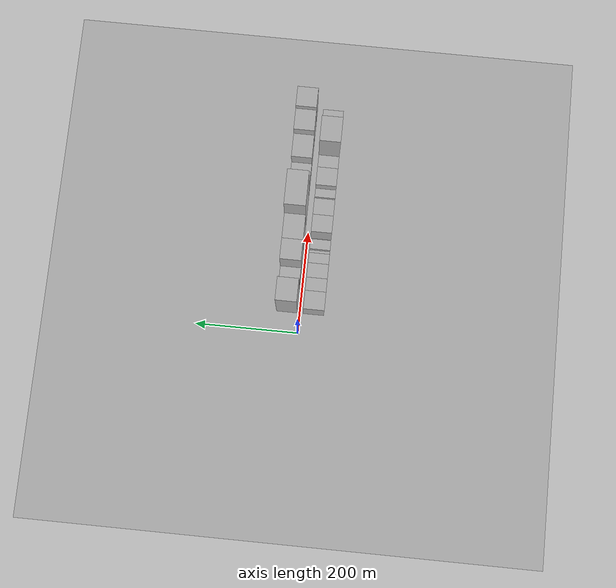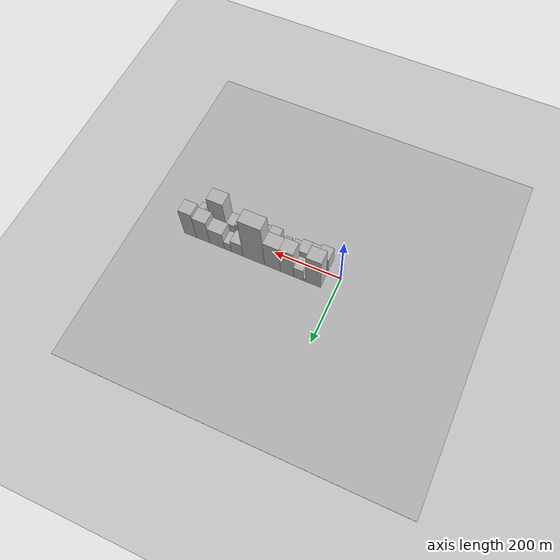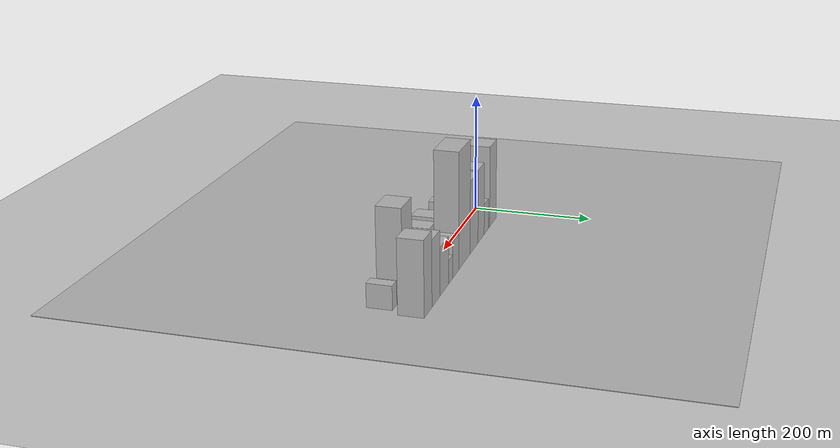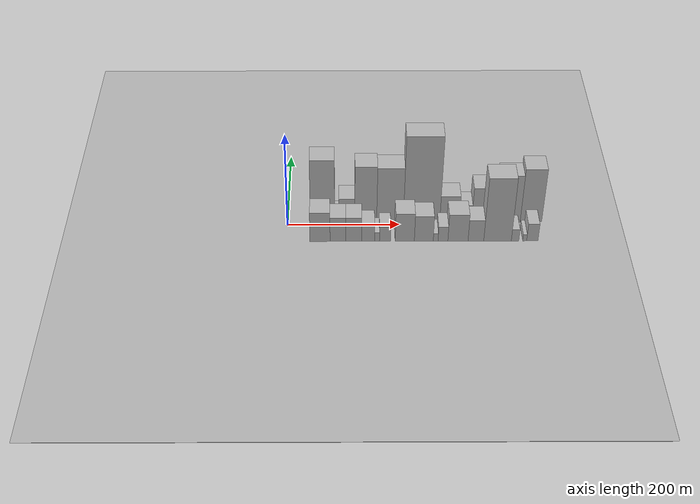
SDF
<?xml version="1.0" encoding="utf-8"?>

<sdf version="1.6">

   <world name="default">

      <gui fullscreen="0">

         <camera name="user_camera">

            <pose>-15 0 4.57585 0 0 0</pose>

            <view_controller>orbit</view_controller>

         </camera>

      </gui>

      <scene>

         <sky>

           <clouds>

             <speed>12</speed>

           </clouds>

         </sky>

         <ambient>0.4 0.4 0.4 1</ambient>

         <background>0.7 0.7 0.7 1</background>

         <shadows>1</shadows>

      </scene>

      <gravity>0 0 -9.8066</gravity>

      <magnetic_field>6e-06 2.3e-05 -4.2e-05</magnetic_field>

      <physics default="0" name="default_physics" type="ode">

         <ode>

            <solver>

               <type>quick</type>

               <iters>10</iters>

               <sor>1.0</sor>

               <use_dynamic_moi_rescaling>0</use_dynamic_moi_rescaling>

            </solver>

            <constraints>

               <cfm>0</cfm>

               <erp>0.2</erp>

               <contact_max_correcting_vel>100</contact_max_correcting_vel>

               <contact_surface_layer>0.001</contact_surface_layer>

            </constraints>

         </ode>

         <max_step_size>0.004</max_step_size>

         <real_time_factor>1</real_time_factor>

         <real_time_update_rate>250</real_time_update_rate>

      </physics>

      <light name="sun" type="directional">

         <cast_shadows>1</cast_shadows>

         <pose>0 0 10 0 0 0</pose>

         <diffuse>0.8 0.8 0.8 1</diffuse>

         <specular>0.2 0.2 0.2 1</specular>

         <attenuation>

            <range>1000</range>

            <constant>0.9</constant>

            <linear>0.01</linear>

            <quadratic>0.001</quadratic>

         </attenuation>

         <direction>-0.5 0.1 -0.9</direction>

      </light>

      <include>

         <name>ground_plane_1</name>

         <uri>model://HANNAS_ground_plane</uri>

         <pose>0 0 0  0 0 0</pose>

      </include>

      <include>

         <name>ground_plane_2</name>

         <uri>model://HANNAS_ground_plane</uri>

         <pose>100 0 0  0 0 0</pose>

      </include>

      <model name="building_1">

         <static>1</static>

         <pose frame="">61.8487 26.0000 0 0.000000 0.000000 1.570796</pose>

         <link name="link">

            <pose frame="">0 0 70.50 0 0 0</pose>

            <collision name="collision">

               <geometry>

                  <box>

                     <size>40.0000 43.6974 141.0000</size>

                  </box>

               </geometry>

               <max_contacts>10</max_contacts>

               <surface>

                  <contact>

                     <ode/>

                  </contact>

                  <bounce/>

                  <friction>

                     <torsional>

                        <ode/>

                     </torsional>

                     <ode/>

                  </friction>

               </surface>

            </collision>

            <visual name="visual">

               <cast_shadows>0</cast_shadows>

               <geometry>

                  <box>

                     <size>40.0000 43.6974 141.0000</size>

                  </box>

               </geometry>

               <material>

                  <script>

                     <uri>model://HANNAS_wall/materials/scripts</uri>

                     <uri>model://HANNAS_wall/materials/textures</uri>

                     <name>vrc/HANNAS_wall</name>

                  </script>

               </material>

            </visual>

            <self_collide>0</self_collide>

            <enable_wind>0</enable_wind>

            <kinematic>0</kinematic>

         </link>

      </model>

      <model name="building_2">

         <static>1</static>

         <pose frame="">87.5309 26.0000 0 0.000000 0.000000 1.570796</pose>

         <link name="link">

            <pose frame="">0 0 9.00 0 0 0</pose>

            <collision name="collision">

               <geometry>

                  <box>

                     <size>40.0000 7.6669 18.0000</size>

                  </box>

               </geometry>

               <max_contacts>10</max_contacts>

               <surface>

                  <contact>

                     <ode/>

                  </contact>

                  <bounce/>

                  <friction>

                     <torsional>

                        <ode/>

                     </torsional>

                     <ode/>

                  </friction>

               </surface>

            </collision>

            <visual name="visual">

               <cast_shadows>0</cast_shadows>

               <geometry>

                  <box>

                     <size>40.0000 7.6669 18.0000</size>

                  </box>

               </geometry>

               <material>

                  <script>

                     <uri>model://HANNAS_wall/materials/scripts</uri>

                     <uri>model://HANNAS_wall/materials/textures</uri>

                     <name>vrc/HANNAS_wall</name>

                  </script>

               </material>

            </visual>

            <self_collide>0</self_collide>

            <enable_wind>0</enable_wind>

            <kinematic>0</kinematic>

         </link>

      </model>

      <model name="building_3">

         <static>1</static>

         <pose frame="">105.5641 26.0000 0 0.000000 0.000000 1.570796</pose>

         <link name="link">

            <pose frame="">0 0 27.00 0 0 0</pose>

            <collision name="collision">

               <geometry>

                  <box>

                     <size>40.0000 28.3994 54.0000</size>

                  </box>

               </geometry>

               <max_contacts>10</max_contacts>

               <surface>

                  <contact>

                     <ode/>

                  </contact>

                  <bounce/>

                  <friction>

                     <torsional>

                        <ode/>

                     </torsional>

                     <ode/>

                  </friction>

               </surface>

            </collision>

            <visual name="visual">

               <cast_shadows>0</cast_shadows>

               <geometry>

                  <box>

                     <size>40.0000 28.3994 54.0000</size>

                  </box>

               </geometry>

               <material>

                  <script>

                     <uri>model://HANNAS_wall/materials/scripts</uri>

                     <uri>model://HANNAS_wall/materials/textures</uri>

                     <name>vrc/HANNAS_wall</name>

                  </script>

               </material>

            </visual>

            <self_collide>0</self_collide>

            <enable_wind>0</enable_wind>

            <kinematic>0</kinematic>

         </link>

      </model>

      <model name="building_4">

         <static>1</static>

         <pose frame="">139.5477 26.0000 0 0.000000 0.000000 1.570796</pose>

         <link name="link">

            <pose frame="">0 0 63.00 0 0 0</pose>

            <collision name="collision">

               <geometry>

                  <box>

                     <size>40.0000 39.5677 126.0000</size>

                  </box>

               </geometry>

               <max_contacts>10</max_contacts>

               <surface>

                  <contact>

                     <ode/>

                  </contact>

                  <bounce/>

                  <friction>

                     <torsional>

                        <ode/>

                     </torsional>

                     <ode/>

                  </friction>

               </surface>

            </collision>

            <visual name="visual">

               <cast_shadows>0</cast_shadows>

               <geometry>

                  <box>

                     <size>40.0000 39.5677 126.0000</size>

                  </box>

               </geometry>

               <material>

                  <script>

                     <uri>model://HANNAS_wall/materials/scripts</uri>

                     <uri>model://HANNAS_wall/materials/textures</uri>

                     <name>vrc/HANNAS_wall</name>

                  </script>

               </material>

            </visual>

            <self_collide>0</self_collide>

            <enable_wind>0</enable_wind>

            <kinematic>0</kinematic>

         </link>

      </model>

      <model name="building_5">

         <static>1</static>

         <pose frame="">183.4390 26.0000 0 0.000000 0.000000 1.570796</pose>

         <link name="link">

            <pose frame="">0 0 61.50 0 0 0</pose>

            <collision name="collision">

               <geometry>

                  <box>

                     <size>40.0000 48.2150 123.0000</size>

                  </box>

               </geometry>

               <max_contacts>10</max_contacts>

               <surface>

                  <contact>

                     <ode/>

                  </contact>

                  <bounce/>

                  <friction>

                     <torsional>

                        <ode/>

                     </torsional>

                     <ode/>

                  </friction>

               </surface>

            </collision>

            <visual name="visual">

               <cast_shadows>0</cast_shadows>

               <geometry>

                  <box>

                     <size>40.0000 48.2150 123.0000</size>

                  </box>

               </geometry>

               <material>

                  <script>

                     <uri>model://HANNAS_wall/materials/scripts</uri>

                     <uri>model://HANNAS_wall/materials/textures</uri>

                     <name>vrc/HANNAS_wall</name>

                  </script>

               </material>

            </visual>

            <self_collide>0</self_collide>

            <enable_wind>0</enable_wind>

            <kinematic>0</kinematic>

         </link>

      </model>

      <model name="building_6">

         <static>1</static>

         <pose frame="">240.3508 26.0000 0 0.000000 0.000000 1.570796</pose>

         <link name="link">

            <pose frame="">0 0 96.00 0 0 0</pose>

            <collision name="collision">

               <geometry>

                  <box>

                     <size>40.0000 65.6086 192.0000</size>

                  </box>

               </geometry>

               <max_contacts>10</max_contacts>

               <surface>

                  <contact>

                     <ode/>

                  </contact>

                  <bounce/>

                  <friction>

                     <torsional>

                        <ode/>

                     </torsional>

                     <ode/>

                  </friction>

               </surface>

            </collision>

            <visual name="visual">

               <cast_shadows>0</cast_shadows>

               <geometry>

                  <box>

                     <size>40.0000 65.6086 192.0000</size>

                  </box>

               </geometry>

               <material>

                  <script>

                     <uri>model://HANNAS_wall/materials/scripts</uri>

                     <uri>model://HANNAS_wall/materials/textures</uri>

                     <name>vrc/HANNAS_wall</name>

                  </script>

               </material>

            </visual>

            <self_collide>0</self_collide>

            <enable_wind>0</enable_wind>

            <kinematic>0</kinematic>

         </link>

      </model>

      <model name="building_7">

         <static>1</static>

         <pose frame="">290.8284 26.0000 0 0.000000 0.000000 1.570796</pose>

         <link name="link">

            <pose frame="">0 0 30.00 0 0 0</pose>

            <collision name="collision">

               <geometry>

                  <box>

                     <size>40.0000 35.3465 60.0000</size>

                  </box>

               </geometry>

               <max_contacts>10</max_contacts>

               <surface>

                  <contact>

                     <ode/>

                  </contact>

                  <bounce/>

                  <friction>

                     <torsional>

                        <ode/>

                     </torsional>

                     <ode/>

                  </friction>

               </surface>

            </collision>

            <visual name="visual">

               <cast_shadows>0</cast_shadows>

               <geometry>

                  <box>

                     <size>40.0000 35.3465 60.0000</size>

                  </box>

               </geometry>

               <material>

                  <script>

                     <uri>model://HANNAS_wall/materials/scripts</uri>

                     <uri>model://HANNAS_wall/materials/textures</uri>

                     <name>vrc/HANNAS_wall</name>

                  </script>

               </material>

            </visual>

            <self_collide>0</self_collide>

            <enable_wind>0</enable_wind>

            <kinematic>0</kinematic>

         </link>

      </model>

      <model name="building_8">

         <static>1</static>

         <pose frame="">319.6880 26.0000 0 0.000000 0.000000 1.570796</pose>

         <link name="link">

            <pose frame="">0 0 19.50 0 0 0</pose>

            <collision name="collision">

               <geometry>

                  <box>

                     <size>40.0000 22.3727 39.0000</size>

                  </box>

               </geometry>

               <max_contacts>10</max_contacts>

               <surface>

                  <contact>

                     <ode/>

                  </contact>

                  <bounce/>

                  <friction>

                     <torsional>

                        <ode/>

                     </torsional>

                     <ode/>

                  </friction>

               </surface>

            </collision>

            <visual name="visual">

               <cast_shadows>0</cast_shadows>

               <geometry>

                  <box>

                     <size>40.0000 22.3727 39.0000</size>

                  </box>

               </geometry>

               <material>

                  <script>

                     <uri>model://HANNAS_wall/materials/scripts</uri>

                     <uri>model://HANNAS_wall/materials/textures</uri>

                     <name>vrc/HANNAS_wall</name>

                  </script>

               </material>

            </visual>

            <self_collide>0</self_collide>

            <enable_wind>0</enable_wind>

            <kinematic>0</kinematic>

         </link>

      </model>

      <model name="building_9">

         <static>1</static>

         <pose frame="">353.8816 26.0000 0 0.000000 0.000000 1.570796</pose>

         <link name="link">

            <pose frame="">0 0 39.00 0 0 0</pose>

            <collision name="collision">

               <geometry>

                  <box>

                     <size>40.0000 46.0145 78.0000</size>

                  </box>

               </geometry>

               <max_contacts>10</max_contacts>

               <surface>

                  <contact>

                     <ode/>

                  </contact>

                  <bounce/>

                  <friction>

                     <torsional>

                        <ode/>

                     </torsional>

                     <ode/>

                  </friction>

               </surface>

            </collision>

            <visual name="visual">

               <cast_shadows>0</cast_shadows>

               <geometry>

                  <box>

                     <size>40.0000 46.0145 78.0000</size>

                  </box>

               </geometry>

               <material>

                  <script>

                     <uri>model://HANNAS_wall/materials/scripts</uri>

                     <uri>model://HANNAS_wall/materials/textures</uri>

                     <name>vrc/HANNAS_wall</name>

                  </script>

               </material>

            </visual>

            <self_collide>0</self_collide>

            <enable_wind>0</enable_wind>

            <kinematic>0</kinematic>

         </link>

      </model>

      <model name="building_10">

         <static>1</static>

         <pose frame="">397.5368 26.0000 0 0.000000 0.000000 1.570796</pose>

         <link name="link">

            <pose frame="">0 0 52.50 0 0 0</pose>

            <collision name="collision">

               <geometry>

                  <box>

                     <size>40.0000 41.2959 105.0000</size>

                  </box>

               </geometry>

               <max_contacts>10</max_contacts>

               <surface>

                  <contact>

                     <ode/>

                  </contact>

                  <bounce/>

                  <friction>

                     <torsional>

                        <ode/>

                     </torsional>

                     <ode/>

                  </friction>

               </surface>

            </collision>

            <visual name="visual">

               <cast_shadows>0</cast_shadows>

               <geometry>

                  <box>

                     <size>40.0000 41.2959 105.0000</size>

                  </box>

               </geometry>

               <material>

                  <script>

                     <uri>model://HANNAS_wall/materials/scripts</uri>

                     <uri>model://HANNAS_wall/materials/textures</uri>

                     <name>vrc/HANNAS_wall</name>

                  </script>

               </material>

            </visual>

            <self_collide>0</self_collide>

            <enable_wind>0</enable_wind>

            <kinematic>0</kinematic>

         </link>

      </model>

      <model name="building_11">

         <static>1</static>

         <pose frame="">437.6232 26.0000 0 0.000000 0.000000 1.570796</pose>

         <link name="link">

            <pose frame="">0 0 60.00 0 0 0</pose>

            <collision name="collision">

               <geometry>

                  <box>

                     <size>40.0000 38.8768 120.0000</size>

                  </box>

               </geometry>

               <max_contacts>10</max_contacts>

               <surface>

                  <contact>

                     <ode/>

                  </contact>

                  <bounce/>

                  <friction>

                     <torsional>

                        <ode/>

                     </torsional>

                     <ode/>

                  </friction>

               </surface>

            </collision>

            <visual name="visual">

               <cast_shadows>0</cast_shadows>

               <geometry>

                  <box>

                     <size>40.0000 38.8768 120.0000</size>

                  </box>

               </geometry>

               <material>

                  <script>

                     <uri>model://HANNAS_wall/materials/scripts</uri>

                     <uri>model://HANNAS_wall/materials/textures</uri>

                     <name>vrc/HANNAS_wall</name>

                  </script>

               </material>

            </visual>

            <self_collide>0</self_collide>

            <enable_wind>0</enable_wind>

            <kinematic>0</kinematic>

         </link>

      </model>

      <model name="building_12">

         <static>1</static>

         <pose frame="">57.7992 -26.0000 0 0.000000 0.000000 1.570796</pose>

         <link name="link">

            <pose frame="">0 0 33.00 0 0 0</pose>

            <collision name="collision">

               <geometry>

                  <box>

                     <size>40.0000 35.5984 66.0000</size>

                  </box>

               </geometry>

               <max_contacts>10</max_contacts>

               <surface>

                  <contact>

                     <ode/>

                  </contact>

                  <bounce/>

                  <friction>

                     <torsional>

                        <ode/>

                     </torsional>

                     <ode/>

                  </friction>

               </surface>

            </collision>

            <visual name="visual">

               <cast_shadows>0</cast_shadows>

               <geometry>

                  <box>

                     <size>40.0000 35.5984 66.0000</size>

                  </box>

               </geometry>

               <material>

                  <script>

                     <uri>model://HANNAS_wall/materials/scripts</uri>

                     <uri>model://HANNAS_wall/materials/textures</uri>

                     <name>vrc/HANNAS_wall</name>

                  </script>

               </material>

            </visual>

            <self_collide>0</self_collide>

            <enable_wind>0</enable_wind>

            <kinematic>0</kinematic>

         </link>

      </model>

      <model name="building_13">

         <static>1</static>

         <pose frame="">89.3924 -26.0000 0 0.000000 0.000000 1.570796</pose>

         <link name="link">

            <pose frame="">0 0 27.00 0 0 0</pose>

            <collision name="collision">

               <geometry>

                  <box>

                     <size>40.0000 27.5880 54.0000</size>

                  </box>

               </geometry>

               <max_contacts>10</max_contacts>

               <surface>

                  <contact>

                     <ode/>

                  </contact>

                  <bounce/>

                  <friction>

                     <torsional>

                        <ode/>

                     </torsional>

                     <ode/>

                  </friction>

               </surface>

            </collision>

            <visual name="visual">

               <cast_shadows>0</cast_shadows>

               <geometry>

                  <box>

                     <size>40.0000 27.5880 54.0000</size>

                  </box>

               </geometry>

               <material>

                  <script>

                     <uri>model://HANNAS_wall/materials/scripts</uri>

                     <uri>model://HANNAS_wall/materials/textures</uri>

                     <name>vrc/HANNAS_wall</name>

                  </script>

               </material>

            </visual>

            <self_collide>0</self_collide>

            <enable_wind>0</enable_wind>

            <kinematic>0</kinematic>

         </link>

      </model>

      <model name="building_14">

         <static>1</static>

         <pose frame="">117.2916 -26.0000 0 0.000000 0.000000 1.570796</pose>

         <link name="link">

            <pose frame="">0 0 27.00 0 0 0</pose>

            <collision name="collision">

               <geometry>

                  <box>

                     <size>40.0000 28.2104 54.0000</size>

                  </box>

               </geometry>

               <max_contacts>10</max_contacts>

               <surface>

                  <contact>

                     <ode/>

                  </contact>

                  <bounce/>

                  <friction>

                     <torsional>

                        <ode/>

                     </torsional>

                     <ode/>

                  </friction>

               </surface>

            </collision>

            <visual name="visual">

               <cast_shadows>0</cast_shadows>

               <geometry>

                  <box>

                     <size>40.0000 28.2104 54.0000</size>

                  </box>

               </geometry>

               <material>

                  <script>

                     <uri>model://HANNAS_wall/materials/scripts</uri>

                     <uri>model://HANNAS_wall/materials/textures</uri>

                     <name>vrc/HANNAS_wall</name>

                  </script>

               </material>

            </visual>

            <self_collide>0</self_collide>

            <enable_wind>0</enable_wind>

            <kinematic>0</kinematic>

         </link>

      </model>

      <model name="building_15">

         <static>1</static>

         <pose frame="">142.8906 -26.0000 0 0.000000 0.000000 1.570796</pose>

         <link name="link">

            <pose frame="">0 0 19.50 0 0 0</pose>

            <collision name="collision">

               <geometry>

                  <box>

                     <size>40.0000 22.9876 39.0000</size>

                  </box>

               </geometry>

               <max_contacts>10</max_contacts>

               <surface>

                  <contact>

                     <ode/>

                  </contact>

                  <bounce/>

                  <friction>

                     <torsional>

                        <ode/>

                     </torsional>

                     <ode/>

                  </friction>

               </surface>

            </collision>

            <visual name="visual">

               <cast_shadows>0</cast_shadows>

               <geometry>

                  <box>

                     <size>40.0000 22.9876 39.0000</size>

                  </box>

               </geometry>

               <material>

                  <script>

                     <uri>model://HANNAS_wall/materials/scripts</uri>

                     <uri>model://HANNAS_wall/materials/textures</uri>

                     <name>vrc/HANNAS_wall</name>

                  </script>

               </material>

            </visual>

            <self_collide>0</self_collide>

            <enable_wind>0</enable_wind>

            <kinematic>0</kinematic>

         </link>

      </model>

      <model name="building_16">

         <static>1</static>

         <pose frame="">158.7467 -26.0000 0 0.000000 0.000000 1.570796</pose>

         <link name="link">

            <pose frame="">0 0 10.50 0 0 0</pose>

            <collision name="collision">

               <geometry>

                  <box>

                     <size>40.0000 8.7246 21.0000</size>

                  </box>

               </geometry>

               <max_contacts>10</max_contacts>

               <surface>

                  <contact>

                     <ode/>

                  </contact>

                  <bounce/>

                  <friction>

                     <torsional>

                        <ode/>

                     </torsional>

                     <ode/>

                  </friction>

               </surface>

            </collision>

            <visual name="visual">

               <cast_shadows>0</cast_shadows>

               <geometry>

                  <box>

                     <size>40.0000 8.7246 21.0000</size>

                  </box>

               </geometry>

               <material>

                  <script>

                     <uri>model://HANNAS_wall/materials/scripts</uri>

                     <uri>model://HANNAS_wall/materials/textures</uri>

                     <name>vrc/HANNAS_wall</name>

                  </script>

               </material>

            </visual>

            <self_collide>0</self_collide>

            <enable_wind>0</enable_wind>

            <kinematic>0</kinematic>

         </link>

      </model>

      <model name="building_17">

         <static>1</static>

         <pose frame="">172.9973 -26.0000 0 0.000000 0.000000 1.570796</pose>

         <link name="link">

            <pose frame="">0 0 16.50 0 0 0</pose>

            <collision name="collision">

               <geometry>

                  <box>

                     <size>40.0000 19.7766 33.0000</size>

                  </box>

               </geometry>

               <max_contacts>10</max_contacts>

               <surface>

                  <contact>

                     <ode/>

                  </contact>

                  <bounce/>

                  <friction>

                     <torsional>

                        <ode/>

                     </torsional>

                     <ode/>

                  </friction>

               </surface>

            </collision>

            <visual name="visual">

               <cast_shadows>0</cast_shadows>

               <geometry>

                  <box>

                     <size>40.0000 19.7766 33.0000</size>

                  </box>

               </geometry>

               <material>

                  <script>

                     <uri>model://HANNAS_wall/materials/scripts</uri>

                     <uri>model://HANNAS_wall/materials/textures</uri>

                     <name>vrc/HANNAS_wall</name>

                  </script>

               </material>

            </visual>

            <self_collide>0</self_collide>

            <enable_wind>0</enable_wind>

            <kinematic>0</kinematic>

         </link>

      </model>

      <model name="building_18">

         <static>1</static>

         <pose frame="">207.8736 -26.0000 0 0.000000 0.000000 1.570796</pose>

         <link name="link">

            <pose frame="">0 0 31.50 0 0 0</pose>

            <collision name="collision">

               <geometry>

                  <box>

                     <size>40.0000 33.9762 63.0000</size>

                  </box>

               </geometry>

               <max_contacts>10</max_contacts>

               <surface>

                  <contact>

                     <ode/>

                  </contact>

                  <bounce/>

                  <friction>

                     <torsional>

                        <ode/>

                     </torsional>

                     <ode/>

                  </friction>

               </surface>

            </collision>

            <visual name="visual">

               <cast_shadows>0</cast_shadows>

               <geometry>

                  <box>

                     <size>40.0000 33.9762 63.0000</size>

                  </box>

               </geometry>

               <material>

                  <script>

                     <uri>model://HANNAS_wall/materials/scripts</uri>

                     <uri>model://HANNAS_wall/materials/textures</uri>

                     <name>vrc/HANNAS_wall</name>

                  </script>

               </material>

            </visual>

            <self_collide>0</self_collide>

            <enable_wind>0</enable_wind>

            <kinematic>0</kinematic>

         </link>

      </model>

      <model name="building_19">

         <static>1</static>

         <pose frame="">241.6289 -26.0000 0 0.000000 0.000000 1.570796</pose>

         <link name="link">

            <pose frame="">0 0 28.50 0 0 0</pose>

            <collision name="collision">

               <geometry>

                  <box>

                     <size>40.0000 33.5344 57.0000</size>

                  </box>

               </geometry>

               <max_contacts>10</max_contacts>

               <surface>

                  <contact>

                     <ode/>

                  </contact>

                  <bounce/>

                  <friction>

                     <torsional>

                        <ode/>

                     </torsional>

                     <ode/>

                  </friction>

               </surface>

            </collision>

            <visual name="visual">

               <cast_shadows>0</cast_shadows>

               <geometry>

                  <box>

                     <size>40.0000 33.5344 57.0000</size>

                  </box>

               </geometry>

               <material>

                  <script>

                     <uri>model://HANNAS_wall/materials/scripts</uri>

                     <uri>model://HANNAS_wall/materials/textures</uri>

                     <name>vrc/HANNAS_wall</name>

                  </script>

               </material>

            </visual>

            <self_collide>0</self_collide>

            <enable_wind>0</enable_wind>

            <kinematic>0</kinematic>

         </link>

      </model>

      <model name="building_20">

         <static>1</static>

         <pose frame="">262.6696 -26.0000 0 0.000000 0.000000 1.570796</pose>

         <link name="link">

            <pose frame="">0 0 9.00 0 0 0</pose>

            <collision name="collision">

               <geometry>

                  <box>

                     <size>40.0000 8.5468 18.0000</size>

                  </box>

               </geometry>

               <max_contacts>10</max_contacts>

               <surface>

                  <contact>

                     <ode/>

                  </contact>

                  <bounce/>

                  <friction>

                     <torsional>

                        <ode/>

                     </torsional>

                     <ode/>

                  </friction>

               </surface>

            </collision>

            <visual name="visual">

               <cast_shadows>0</cast_shadows>

               <geometry>

                  <box>

                     <size>40.0000 8.5468 18.0000</size>

                  </box>

               </geometry>

               <material>

                  <script>

                     <uri>model://HANNAS_wall/materials/scripts</uri>

                     <uri>model://HANNAS_wall/materials/textures</uri>

                     <name>vrc/HANNAS_wall</name>

                  </script>

               </material>

            </visual>

            <self_collide>0</self_collide>

            <enable_wind>0</enable_wind>

            <kinematic>0</kinematic>

         </link>

      </model>

      <model name="building_21">

         <static>1</static>

         <pose frame="">275.6349 -26.0000 0 0.000000 0.000000 1.570796</pose>

         <link name="link">

            <pose frame="">0 0 16.50 0 0 0</pose>

            <collision name="collision">

               <geometry>

                  <box>

                     <size>40.0000 17.3839 33.0000</size>

                  </box>

               </geometry>

               <max_contacts>10</max_contacts>

               <surface>

                  <contact>

                     <ode/>

                  </contact>

                  <bounce/>

                  <friction>

                     <torsional>

                        <ode/>

                     </torsional>

                     <ode/>

                  </friction>

               </surface>

            </collision>

            <visual name="visual">

               <cast_shadows>0</cast_shadows>

               <geometry>

                  <box>

                     <size>40.0000 17.3839 33.0000</size>

                  </box>

               </geometry>

               <material>

                  <script>

                     <uri>model://HANNAS_wall/materials/scripts</uri>

                     <uri>model://HANNAS_wall/materials/textures</uri>

                     <name>vrc/HANNAS_wall</name>

                  </script>

               </material>

            </visual>

            <self_collide>0</self_collide>

            <enable_wind>0</enable_wind>

            <kinematic>0</kinematic>

         </link>

      </model>

      <model name="building_22">

         <static>1</static>

         <pose frame="">302.1849 -26.0000 0 0.000000 0.000000 1.570796</pose>

         <link name="link">

            <pose frame="">0 0 30.00 0 0 0</pose>

            <collision name="collision">

               <geometry>

                  <box>

                     <size>40.0000 35.7162 60.0000</size>

                  </box>

               </geometry>

               <max_contacts>10</max_contacts>

               <surface>

                  <contact>

                     <ode/>

                  </contact>

                  <bounce/>

                  <friction>

                     <torsional>

                        <ode/>

                     </torsional>

                     <ode/>

                  </friction>

               </surface>

            </collision>

            <visual name="visual">

               <cast_shadows>0</cast_shadows>

               <geometry>

                  <box>

                     <size>40.0000 35.7162 60.0000</size>

                  </box>

               </geometry>

               <material>

                  <script>

                     <uri>model://HANNAS_wall/materials/scripts</uri>

                     <uri>model://HANNAS_wall/materials/textures</uri>

                     <name>vrc/HANNAS_wall</name>

                  </script>

               </material>

            </visual>

            <self_collide>0</self_collide>

            <enable_wind>0</enable_wind>

            <kinematic>0</kinematic>

         </link>

      </model>

      <model name="building_23">

         <static>1</static>

         <pose frame="">333.9489 -26.0000 0 0.000000 0.000000 1.570796</pose>

         <link name="link">

            <pose frame="">0 0 24.00 0 0 0</pose>

            <collision name="collision">

               <geometry>

                  <box>

                     <size>40.0000 27.8118 48.0000</size>

                  </box>

               </geometry>

               <max_contacts>10</max_contacts>

               <surface>

                  <contact>

                     <ode/>

                  </contact>

                  <bounce/>

                  <friction>

                     <torsional>

                        <ode/>

                     </torsional>

                     <ode/>

                  </friction>

               </surface>

            </collision>

            <visual name="visual">

               <cast_shadows>0</cast_shadows>

               <geometry>

                  <box>

                     <size>40.0000 27.8118 48.0000</size>

                  </box>

               </geometry>

               <material>

                  <script>

                     <uri>model://HANNAS_wall/materials/scripts</uri>

                     <uri>model://HANNAS_wall/materials/textures</uri>

                     <name>vrc/HANNAS_wall</name>

                  </script>

               </material>

            </visual>

            <self_collide>0</self_collide>

            <enable_wind>0</enable_wind>

            <kinematic>0</kinematic>

         </link>

      </model>

      <model name="building_24">

         <static>1</static>

         <pose frame="">372.3172 -26.0000 0 0.000000 0.000000 1.570796</pose>

         <link name="link">

            <pose frame="">0 0 70.50 0 0 0</pose>

            <collision name="collision">

               <geometry>

                  <box>

                     <size>40.0000 48.9248 141.0000</size>

                  </box>

               </geometry>

               <max_contacts>10</max_contacts>

               <surface>

                  <contact>

                     <ode/>

                  </contact>

                  <bounce/>

                  <friction>

                     <torsional>

                        <ode/>

                     </torsional>

                     <ode/>

                  </friction>

               </surface>

            </collision>

            <visual name="visual">

               <cast_shadows>0</cast_shadows>

               <geometry>

                  <box>

                     <size>40.0000 48.9248 141.0000</size>

                  </box>

               </geometry>

               <material>

                  <script>

                     <uri>model://HANNAS_wall/materials/scripts</uri>

                     <uri>model://HANNAS_wall/materials/textures</uri>

                     <name>vrc/HANNAS_wall</name>

                  </script>

               </material>

            </visual>

            <self_collide>0</self_collide>

            <enable_wind>0</enable_wind>

            <kinematic>0</kinematic>

         </link>

      </model>

      <model name="building_25">

         <static>1</static>

         <pose frame="">403.4434 -26.0000 0 0.000000 0.000000 1.570796</pose>

         <link name="link">

            <pose frame="">0 0 13.50 0 0 0</pose>

            <collision name="collision">

               <geometry>

                  <box>

                     <size>40.0000 13.3276 27.0000</size>

                  </box>

               </geometry>

               <max_contacts>10</max_contacts>

               <surface>

                  <contact>

                     <ode/>

                  </contact>

                  <bounce/>

                  <friction>

                     <torsional>

                        <ode/>

                     </torsional>

                     <ode/>

                  </friction>

               </surface>

            </collision>

            <visual name="visual">

               <cast_shadows>0</cast_shadows>

               <geometry>

                  <box>

                     <size>40.0000 13.3276 27.0000</size>

                  </box>

               </geometry>

               <material>

                  <script>

                     <uri>model://HANNAS_wall/materials/scripts</uri>

                     <uri>model://HANNAS_wall/materials/textures</uri>

                     <name>vrc/HANNAS_wall</name>

                  </script>

               </material>

            </visual>

            <self_collide>0</self_collide>

            <enable_wind>0</enable_wind>

            <kinematic>0</kinematic>

         </link>

      </model>

      <model name="building_26">

         <static>1</static>

         <pose frame="">420.5434 -26.0000 0 0.000000 0.000000 1.570796</pose>

         <link name="link">

            <pose frame="">0 0 7.50 0 0 0</pose>

            <collision name="collision">

               <geometry>

                  <box>

                     <size>40.0000 6.8724 15.0000</size>

                  </box>

               </geometry>

               <max_contacts>10</max_contacts>

               <surface>

                  <contact>

                     <ode/>

                  </contact>

                  <bounce/>

                  <friction>

                     <torsional>

                        <ode/>

                     </torsional>

                     <ode/>

                  </friction>

               </surface>

            </collision>

            <visual name="visual">

               <cast_shadows>0</cast_shadows>

               <geometry>

                  <box>

                     <size>40.0000 6.8724 15.0000</size>

                  </box>

               </geometry>

               <material>

                  <script>

                     <uri>model://HANNAS_wall/materials/scripts</uri>

                     <uri>model://HANNAS_wall/materials/textures</uri>

                     <name>vrc/HANNAS_wall</name>

                  </script>

               </material>

            </visual>

            <self_collide>0</self_collide>

            <enable_wind>0</enable_wind>

            <kinematic>0</kinematic>

         </link>

      </model>

      <model name="building_27">

         <static>1</static>

         <pose frame="">434.0222 -26.0000 0 0.000000 0.000000 1.570796</pose>

         <link name="link">

            <pose frame="">0 0 19.50 0 0 0</pose>

            <collision name="collision">

               <geometry>

                  <box>

                     <size>40.0000 20.0852 39.0000</size>

                  </box>

               </geometry>

               <max_contacts>10</max_contacts>

               <surface>

                  <contact>

                     <ode/>

                  </contact>

                  <bounce/>

                  <friction>

                     <torsional>

                        <ode/>

                     </torsional>

                     <ode/>

                  </friction>

               </surface>

            </collision>

            <visual name="visual">

               <cast_shadows>0</cast_shadows>

               <geometry>

                  <box>

                     <size>40.0000 20.0852 39.0000</size>

                  </box>

               </geometry>

               <material>

                  <script>

                     <uri>model://HANNAS_wall/materials/scripts</uri>

                     <uri>model://HANNAS_wall/materials/textures</uri>

                     <name>vrc/HANNAS_wall</name>

                  </script>

               </material>

            </visual>

            <self_collide>0</self_collide>

            <enable_wind>0</enable_wind>

            <kinematic>0</kinematic>

         </link>

      </model>

   </world>

</sdf>

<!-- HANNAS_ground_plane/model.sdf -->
<sdf version="1.4">
<model name="HANNAS_ground_plane">
  <static>true</static>
    <link name="link">
      <collision name="collision">
        <geometry>
          <plane>
            <normal>0 0 1</normal>
            <size>1000 1000</size>
          </plane>
        </geometry>
        <surface>
          <friction>
            <ode>
              <mu>100</mu>
              <mu2>50</mu2>
            </ode>
          </friction>
        </surface>
      </collision>
      <visual name="visual">
        <cast_shadows>false</cast_shadows>
        <geometry>
          <plane>
            <normal>0 0 1</normal>
            <size>1000 1000</size>
          </plane>
        </geometry>
        <material>
          <script>
            <uri>model://HANNAS_ground_plane/materials/scripts/HANNAS_ground_plane.material</uri>
	    <uri>model://HANNAS_ground_plane/materials/textures</uri>
            <name>HANNASGroundPlane/Image</name>
          </script>
        </material>
      </visual>
    </link>
  </model>
</sdf>
